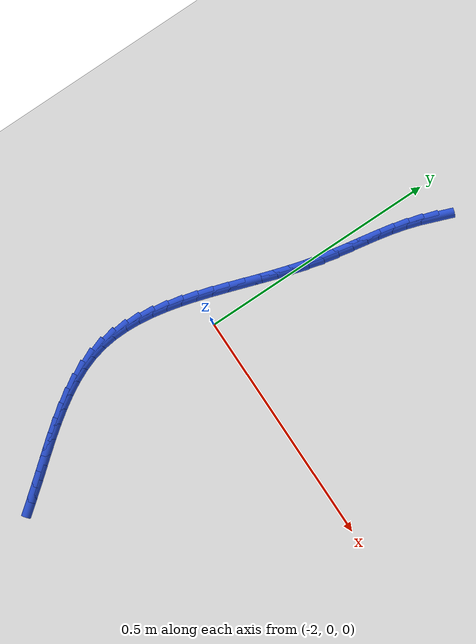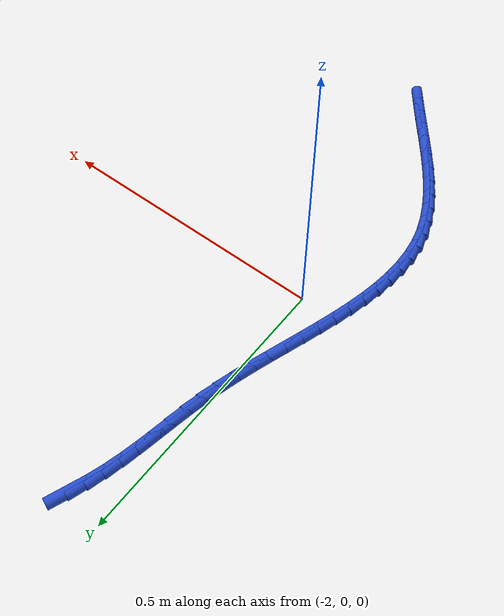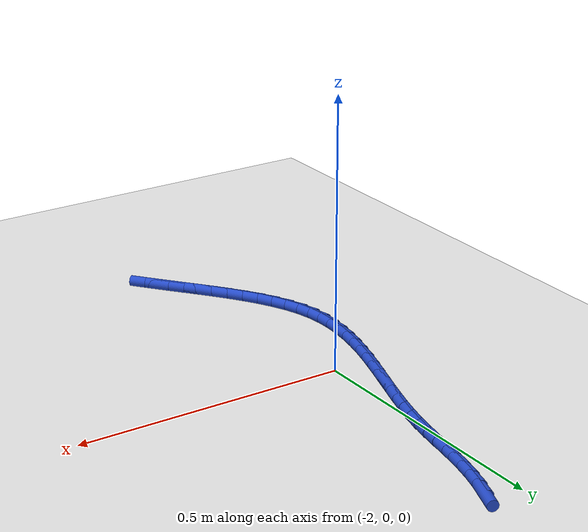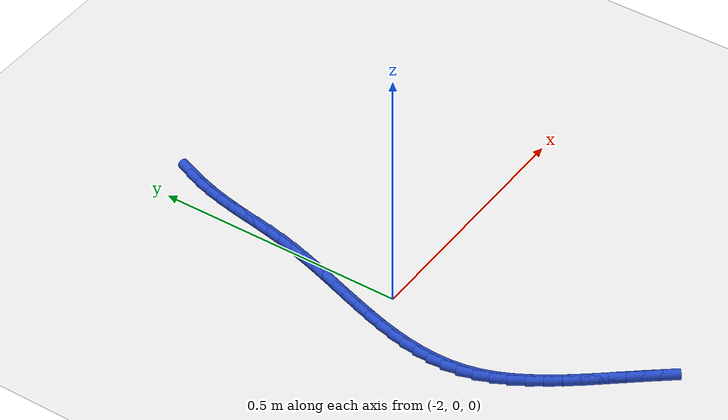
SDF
<sdf version="1.6">
 <world name="default">
  <model name="ground_plane">
   <static>1</static>
   <link name="link">
    <collision name="collision">
     <geometry><plane><normal>0 0 1</normal><size>100 100</size></plane></geometry>
     <surface><friction><ode><mu>100</mu><mu2>50</mu2></ode></friction></surface>
    </collision>
    <visual name="visual">
     <cast_shadows>0</cast_shadows>
     <geometry><plane><normal>0 0 1</normal><size>100 100</size></plane></geometry>
     <material>
      <script><uri>file://media/materials/scripts/gazebo.material</uri><name>Gazebo/WhiteGlow</name></script>
     </material>
    </visual>
   </link>
  </model>
  <model name="line">
   <link name="link_88">
    <pose>-1.9339796109086578 0.48804056972701626 0.01 0 1.57 1.2099404225785515</pose>
    <collision name="collision">
     <geometry><cylinder><radius>0.01</radius><length>0.08</length></cylinder></geometry>
    </collision>
    <visual name="visual">
     <material>
      <script><name>Gazebo/Blue</name><uri>file://media/materials/scripts/gazebo.material</uri></script>
     </material>
     <geometry><cylinder><radius>0.01</radius><length>0.08</length></cylinder></geometry>
    </visual>
   </link>
   <link name="link_89">
    <pose>-1.9448341794284199 0.45927762815275425 0.01 0 1.57 1.268632754780275</pose>
    <collision name="collision">
     <geometry><cylinder><radius>0.01</radius><length>0.08</length></cylinder></geometry>
    </collision>
    <visual name="visual">
     <material>
      <script><name>Gazebo/Blue</name><uri>file://media/materials/scripts/gazebo.material</uri></script>
     </material>
     <geometry><cylinder><radius>0.01</radius><length>0.08</length></cylinder></geometry>
    </visual>
   </link>
   <link name="link_90">
    <pose>-1.9539315858064408 0.4300920010470188 0.01 0 1.57 1.3219671409491516</pose>
    <collision name="collision">
     <geometry><cylinder><radius>0.01</radius><length>0.08</length></cylinder></geometry>
    </collision>
    <visual name="visual">
     <material>
      <script><name>Gazebo/Blue</name><uri>file://media/materials/scripts/gazebo.material</uri></script>
     </material>
     <geometry><cylinder><radius>0.01</radius><length>0.08</length></cylinder></geometry>
    </visual>
   </link>
   <link name="link_91">
    <pose>-1.9614431805296944 0.40052986679164126 0.01 0 1.57 1.360869512504788</pose>
    <collision name="collision">
     <geometry><cylinder><radius>0.01</radius><length>0.08</length></cylinder></geometry>
    </collision>
    <visual name="visual">
     <material>
      <script><name>Gazebo/Blue</name><uri>file://media/materials/scripts/gazebo.material</uri></script>
     </material>
     <geometry><cylinder><radius>0.01</radius><length>0.08</length></cylinder></geometry>
    </visual>
   </link>
   <link name="link_92">
    <pose>-1.9678138133186334 0.3706300482818854 0.01 0 1.57 1.3846565152561625</pose>
    <collision name="collision">
     <geometry><cylinder><radius>0.01</radius><length>0.08</length></cylinder></geometry>
    </collision>
    <visual name="visual">
     <material>
      <script><name>Gazebo/Blue</name><uri>file://media/materials/scripts/gazebo.material</uri></script>
     </material>
     <geometry><cylinder><radius>0.01</radius><length>0.08</length></cylinder></geometry>
    </visual>
   </link>
   <link name="link_93">
    <pose>-1.9735008869227857 0.3404310308119354 0.01 0 1.57 1.3933978084032248</pose>
    <collision name="collision">
     <geometry><cylinder><radius>0.01</radius><length>0.08</length></cylinder></geometry>
    </collision>
    <visual name="visual">
     <material>
      <script><name>Gazebo/Blue</name><uri>file://media/materials/scripts/gazebo.material</uri></script>
     </material>
     <geometry><cylinder><radius>0.01</radius><length>0.08</length></cylinder></geometry>
    </visual>
   </link>
   <link name="link_94">
    <pose>-1.9789618040916812 0.3099712996759746 0.01 0 1.57 1.3873603548580036</pose>
    <collision name="collision">
     <geometry><cylinder><radius>0.01</radius><length>0.08</length></cylinder></geometry>
    </collision>
    <visual name="visual">
     <material>
      <script><name>Gazebo/Blue</name><uri>file://media/materials/scripts/gazebo.material</uri></script>
     </material>
     <geometry><cylinder><radius>0.01</radius><length>0.08</length></cylinder></geometry>
    </visual>
   </link>
   <link name="link_95">
    <pose>-1.9846539675748494 0.27928934016818596 0.01 0 1.57 1.3669397498408609</pose>
    <collision name="collision">
     <geometry><cylinder><radius>0.01</radius><length>0.08</length></cylinder></geometry>
    </collision>
    <visual name="visual">
     <material>
      <script><name>Gazebo/Blue</name><uri>file://media/materials/scripts/gazebo.material</uri></script>
     </material>
     <geometry><cylinder><radius>0.01</radius><length>0.08</length></cylinder></geometry>
    </visual>
   </link>
   <link name="link_96">
    <pose>-1.9910347801218193 0.24842363758275401 0.01 0 1.57 1.3332853383904508</pose>
    <collision name="collision">
     <geometry><cylinder><radius>0.01</radius><length>0.08</length></cylinder></geometry>
    </collision>
    <visual name="visual">
     <material>
      <script><name>Gazebo/Blue</name><uri>file://media/materials/scripts/gazebo.material</uri></script>
     </material>
     <geometry><cylinder><radius>0.01</radius><length>0.08</length></cylinder></geometry>
    </visual>
   </link>
   <link name="link_97">
    <pose>-1.9985418975139757 0.21741277283872498 0.01 0 1.57 1.2984991638154117</pose>
    <collision name="collision">
     <geometry><cylinder><radius>0.01</radius><length>0.08</length></cylinder></geometry>
    </collision>
    <visual name="visual">
     <material>
      <script><name>Gazebo/Blue</name><uri>file://media/materials/scripts/gazebo.material</uri></script>
     </material>
     <geometry><cylinder><radius>0.01</radius><length>0.08</length></cylinder></geometry>
    </visual>
   </link>
   <link name="link_98">
    <pose>-2.007230392628089 0.18629717951615496 0.01 0 1.57 1.2727350688867471</pose>
    <collision name="collision">
     <geometry><cylinder><radius>0.01</radius><length>0.08</length></cylinder></geometry>
    </collision>
    <visual name="visual">
     <material>
      <script><name>Gazebo/Blue</name><uri>file://media/materials/scripts/gazebo.material</uri></script>
     </material>
     <geometry><cylinder><radius>0.01</radius><length>0.08</length></cylinder></geometry>
    </visual>
   </link>
   <link name="link_99">
    <pose>-2.0168087522157285 0.15511896954139615 0.01 0 1.57 1.255850768649712</pose>
    <collision name="collision">
     <geometry><cylinder><radius>0.01</radius><length>0.08</length></cylinder></geometry>
    </collision>
    <visual name="visual">
     <material>
      <script><name>Gazebo/Blue</name><uri>file://media/materials/scripts/gazebo.material</uri></script>
     </material>
     <geometry><cylinder><radius>0.01</radius><length>0.08</length></cylinder></geometry>
    </visual>
   </link>
   <link name="link_100">
    <pose>-2.0269729374597576 0.12392031549597425 0.01 0 1.57 1.2474974398271252</pose>
    <collision name="collision">
     <geometry><cylinder><radius>0.01</radius><length>0.08</length></cylinder></geometry>
    </collision>
    <visual name="visual">
     <material>
      <script><name>Gazebo/Blue</name><uri>file://media/materials/scripts/gazebo.material</uri></script>
     </material>
     <geometry><cylinder><radius>0.01</radius><length>0.08</length></cylinder></geometry>
    </visual>
   </link>
   <link name="link_101">
    <pose>-2.037418909543038 0.09274338996141483 0.01 0 1.57 1.2475217603092241</pose>
    <collision name="collision">
     <geometry><cylinder><radius>0.01</radius><length>0.08</length></cylinder></geometry>
    </collision>
    <visual name="visual">
     <material>
      <script><name>Gazebo/Blue</name><uri>file://media/materials/scripts/gazebo.material</uri></script>
     </material>
     <geometry><cylinder><radius>0.01</radius><length>0.08</length></cylinder></geometry>
    </visual>
   </link>
   <link name="link_102">
    <pose>-2.047842629648432 0.061630365519244605 0.01 0 1.57 1.255976176823649</pose>
    <collision name="collision">
     <geometry><cylinder><radius>0.01</radius><length>0.08</length></cylinder></geometry>
    </collision>
    <visual name="visual">
     <material>
      <script><name>Gazebo/Blue</name><uri>file://media/materials/scripts/gazebo.material</uri></script>
     </material>
     <geometry><cylinder><radius>0.01</radius><length>0.08</length></cylinder></geometry>
    </visual>
   </link>
   <link name="link_103">
    <pose>-2.057940058958799 0.03062341475098907 0.01 0 1.57 1.2731231260384035</pose>
    <collision name="collision">
     <geometry><cylinder><radius>0.01</radius><length>0.08</length></cylinder></geometry>
    </collision>
    <visual name="visual">
     <material>
      <script><name>Gazebo/Blue</name><uri>file://media/materials/scripts/gazebo.material</uri></script>
     </material>
     <geometry><cylinder><radius>0.01</radius><length>0.08</length></cylinder></geometry>
    </visual>
   </link>
   <link name="link_104">
    <pose>-2.067407158657004 -0.00023528976182571673 0.01 0 1.57 1.2994329009618086</pose>
    <collision name="collision">
     <geometry><cylinder><radius>0.01</radius><length>0.08</length></cylinder></geometry>
    </collision>
    <visual name="visual">
     <material>
      <script><name>Gazebo/Blue</name><uri>file://media/materials/scripts/gazebo.material</uri></script>
     </material>
     <geometry><cylinder><radius>0.01</radius><length>0.08</length></cylinder></geometry>
    </visual>
   </link>
   <link name="link_105">
    <pose>-2.075939889925909 -0.0309035754376739 0.01 0 1.57 1.3355695742879832</pose>
    <collision name="collision">
     <geometry><cylinder><radius>0.01</radius><length>0.08</length></cylinder></geometry>
    </collision>
    <visual name="visual">
     <material>
      <script><name>Gazebo/Blue</name><uri>file://media/materials/scripts/gazebo.material</uri></script>
     </material>
     <geometry><cylinder><radius>0.01</radius><length>0.08</length></cylinder></geometry>
    </visual>
   </link>
   <link name="link_106">
    <pose>-2.0832342139483755 -0.06133926969503015 0.01 0 1.57 1.3823528242622032</pose>
    <collision name="collision">
     <geometry><cylinder><radius>0.01</radius><length>0.08</length></cylinder></geometry>
    </collision>
    <visual name="visual">
     <material>
      <script><name>Gazebo/Blue</name><uri>file://media/materials/scripts/gazebo.material</uri></script>
     </material>
     <geometry><cylinder><radius>0.01</radius><length>0.08</length></cylinder></geometry>
    </visual>
   </link>
   <link name="link_107">
    <pose>-2.0889860919072647 -0.09150019995236716 0.01 0 1.57 1.440675442660412</pose>
    <collision name="collision">
     <geometry><cylinder><radius>0.01</radius><length>0.08</length></cylinder></geometry>
    </collision>
    <visual name="visual">
     <material>
      <script><name>Gazebo/Blue</name><uri>file://media/materials/scripts/gazebo.material</uri></script>
     </material>
     <geometry><cylinder><radius>0.01</radius><length>0.08</length></cylinder></geometry>
    </visual>
   </link>
   <link name="link_108">
    <pose>-2.0928914849854388 -0.12134419362815965 0.01 0 1.57 1.5113488612451562</pose>
    <collision name="collision">
     <geometry><cylinder><radius>0.01</radius><length>0.08</length></cylinder></geometry>
    </collision>
    <visual name="visual">
     <material>
      <script><name>Gazebo/Blue</name><uri>file://media/materials/scripts/gazebo.material</uri></script>
     </material>
     <geometry><cylinder><radius>0.01</radius><length>0.08</length></cylinder></geometry>
    </visual>
   </link>
   <link name="link_109">
    <pose>-2.0946463543657607 -0.15082907814088167 0.01 0 1.57 -1.5467429728829676</pose>
    <collision name="collision">
     <geometry><cylinder><radius>0.01</radius><length>0.08</length></cylinder></geometry>
    </collision>
    <visual name="visual">
     <material>
      <script><name>Gazebo/Blue</name><uri>file://media/materials/scripts/gazebo.material</uri></script>
     </material>
     <geometry><cylinder><radius>0.01</radius><length>0.08</length></cylinder></geometry>
    </visual>
   </link>
   <link name="link_110">
    <pose>-2.0939466612310924 -0.17991268090900733 0.01 0 1.57 -1.4506282321801252</pose>
    <collision name="collision">
     <geometry><cylinder><radius>0.01</radius><length>0.08</length></cylinder></geometry>
    </collision>
    <visual name="visual">
     <material>
      <script><name>Gazebo/Blue</name><uri>file://media/materials/scripts/gazebo.material</uri></script>
     </material>
     <geometry><cylinder><radius>0.01</radius><length>0.08</length></cylinder></geometry>
    </visual>
   </link>
   <link name="link_111">
    <pose>-2.090488366764295 -0.2085528293510106 0.01 0 1.57 -1.3432723438964163</pose>
    <collision name="collision">
     <geometry><cylinder><radius>0.01</radius><length>0.08</length></cylinder></geometry>
    </collision>
    <visual name="visual">
     <material>
      <script><name>Gazebo/Blue</name><uri>file://media/materials/scripts/gazebo.material</uri></script>
     </material>
     <geometry><cylinder><radius>0.01</radius><length>0.08</length></cylinder></geometry>
    </visual>
   </link>
   <link name="link_112">
    <pose>-2.0839696085883785 -0.23670758514226756 0.01 0 1.57 -1.2351025118222045</pose>
    <collision name="collision">
     <geometry><cylinder><radius>0.01</radius><length>0.08</length></cylinder></geometry>
    </collision>
    <visual name="visual">
     <material>
      <script><name>Gazebo/Blue</name><uri>file://media/materials/scripts/gazebo.material</uri></script>
     </material>
     <geometry><cylinder><radius>0.01</radius><length>0.08</length></cylinder></geometry>
    </visual>
   </link>
   <link name="link_113">
    <pose>-2.074321666942926 -0.26436010381014996 0.01 0 1.57 -1.1425336497229253</pose>
    <collision name="collision">
     <geometry><cylinder><radius>0.01</radius><length>0.08</length></cylinder></geometry>
    </collision>
    <visual name="visual">
     <material>
      <script><name>Gazebo/Blue</name><uri>file://media/materials/scripts/gazebo.material</uri></script>
     </material>
     <geometry><cylinder><radius>0.01</radius><length>0.08</length></cylinder></geometry>
    </visual>
   </link>
   <link name="link_114">
    <pose>-2.0619132192259326 -0.29154061927429864 0.01 0 1.57 -1.0667211049445995</pose>
    <collision name="collision">
     <geometry><cylinder><radius>0.01</radius><length>0.08</length></cylinder></geometry>
    </collision>
    <visual name="visual">
     <material>
      <script><name>Gazebo/Blue</name><uri>file://media/materials/scripts/gazebo.material</uri></script>
     </material>
     <geometry><cylinder><radius>0.01</radius><length>0.08</length></cylinder></geometry>
    </visual>
   </link>
   <link name="link_115">
    <pose>-2.047161112327769 -0.3182845500839609 0.01 0 1.57 -1.006357854385699</pose>
    <collision name="collision">
     <geometry><cylinder><radius>0.01</radius><length>0.08</length></cylinder></geometry>
    </collision>
    <visual name="visual">
     <material>
      <script><name>Gazebo/Blue</name><uri>file://media/materials/scripts/gazebo.material</uri></script>
     </material>
     <geometry><cylinder><radius>0.01</radius><length>0.08</length></cylinder></geometry>
    </visual>
   </link>
   <link name="link_116">
    <pose>-2.030482193138808 -0.3446273147883841 0.01 0 1.57 -0.9599419024843686</pose>
    <collision name="collision">
     <geometry><cylinder><radius>0.01</radius><length>0.08</length></cylinder></geometry>
    </collision>
    <visual name="visual">
     <material>
      <script><name>Gazebo/Blue</name><uri>file://media/materials/scripts/gazebo.material</uri></script>
     </material>
     <geometry><cylinder><radius>0.01</radius><length>0.08</length></cylinder></geometry>
    </visual>
   </link>
   <link name="link_117">
    <pose>-2.0122933085494217 -0.37060433193681536 0.01 0 1.57 -0.9261237123531575</pose>
    <collision name="collision">
     <geometry><cylinder><radius>0.01</radius><length>0.08</length></cylinder></geometry>
    </collision>
    <visual name="visual">
     <material>
      <script><name>Gazebo/Blue</name><uri>file://media/materials/scripts/gazebo.material</uri></script>
     </material>
     <geometry><cylinder><radius>0.01</radius><length>0.08</length></cylinder></geometry>
    </visual>
   </link>
   <link name="link_118">
    <pose>-1.993011305449981 -0.39625102007850177 0.01 0 1.57 -0.9038761341581669</pose>
    <collision name="collision">
     <geometry><cylinder><radius>0.01</radius><length>0.08</length></cylinder></geometry>
    </collision>
    <visual name="visual">
     <material>
      <script><name>Gazebo/Blue</name><uri>file://media/materials/scripts/gazebo.material</uri></script>
     </material>
     <geometry><cylinder><radius>0.01</radius><length>0.08</length></cylinder></geometry>
    </visual>
   </link>
   <link name="link_119">
    <pose>-1.9730530307308587 -0.42160279776269144 0.01 0 1.57 -0.8925690109908994</pose>
    <collision name="collision">
     <geometry><cylinder><radius>0.01</radius><length>0.08</length></cylinder></geometry>
    </collision>
    <visual name="visual">
     <material>
      <script><name>Gazebo/Blue</name><uri>file://media/materials/scripts/gazebo.material</uri></script>
     </material>
     <geometry><cylinder><radius>0.01</radius><length>0.08</length></cylinder></geometry>
    </visual>
   </link>
   <link name="link_120">
    <pose>-1.9528353312824265 -0.44669508353863013 0.01 0 1.57 -0.8919947609123147</pose>
    <collision name="collision">
     <geometry><cylinder><radius>0.01</radius><length>0.08</length></cylinder></geometry>
    </collision>
    <visual name="visual">
     <material>
      <script><name>Gazebo/Blue</name><uri>file://media/materials/scripts/gazebo.material</uri></script>
     </material>
     <geometry><cylinder><radius>0.01</radius><length>0.08</length></cylinder></geometry>
    </visual>
   </link>
   <link name="link_121">
    <pose>-1.9327746054559818 -0.47156330501169996 0.01 0 1.57 -0.8991438584547468</pose>
    <collision name="collision">
     <geometry><cylinder><radius>0.01</radius><length>0.08</length></cylinder></geometry>
    </collision>
    <visual name="visual">
     <material>
      <script><name>Gazebo/Blue</name><uri>file://media/materials/scripts/gazebo.material</uri></script>
     </material>
     <geometry><cylinder><radius>0.01</radius><length>0.08</length></cylinder></geometry>
    </visual>
   </link>
   <link name="link_122">
    <pose>-1.9131534874854514 -0.4962455905236663 0.01 0 1.57 -0.9064202626149886</pose>
    <collision name="collision">
     <geometry><cylinder><radius>0.01</radius><length>0.08</length></cylinder></geometry>
    </collision>
    <visual name="visual">
     <material>
      <script><name>Gazebo/Blue</name><uri>file://media/materials/scripts/gazebo.material</uri></script>
     </material>
     <geometry><cylinder><radius>0.01</radius><length>0.08</length></cylinder></geometry>
    </visual>
   </link>
  </model>
 </world>
</sdf>
